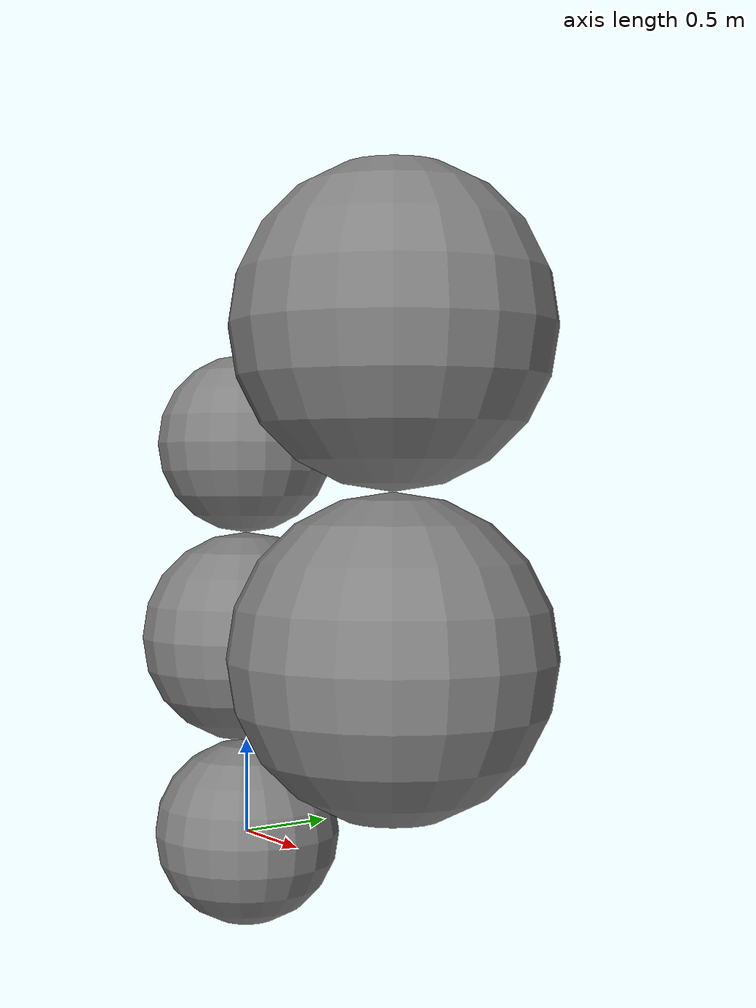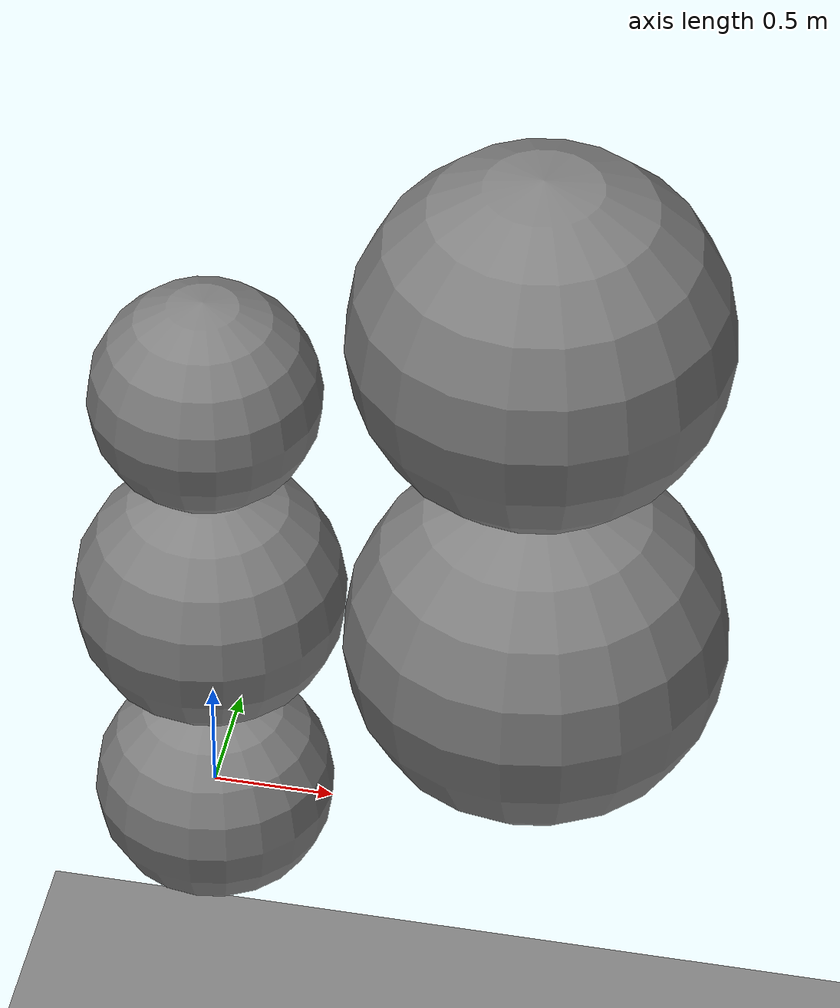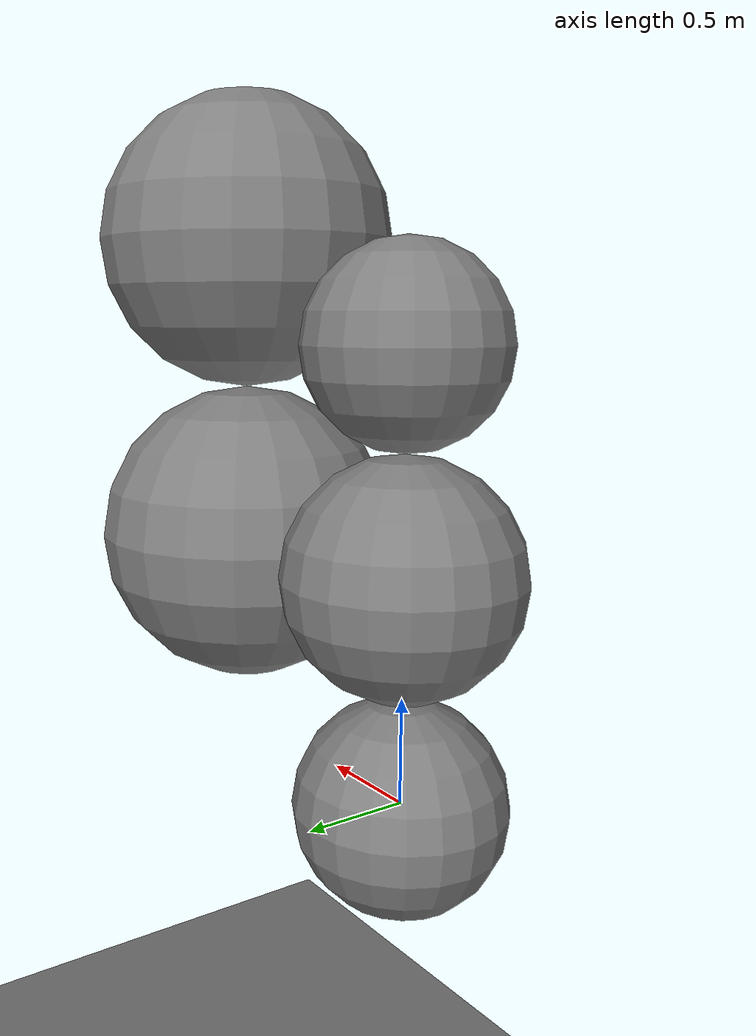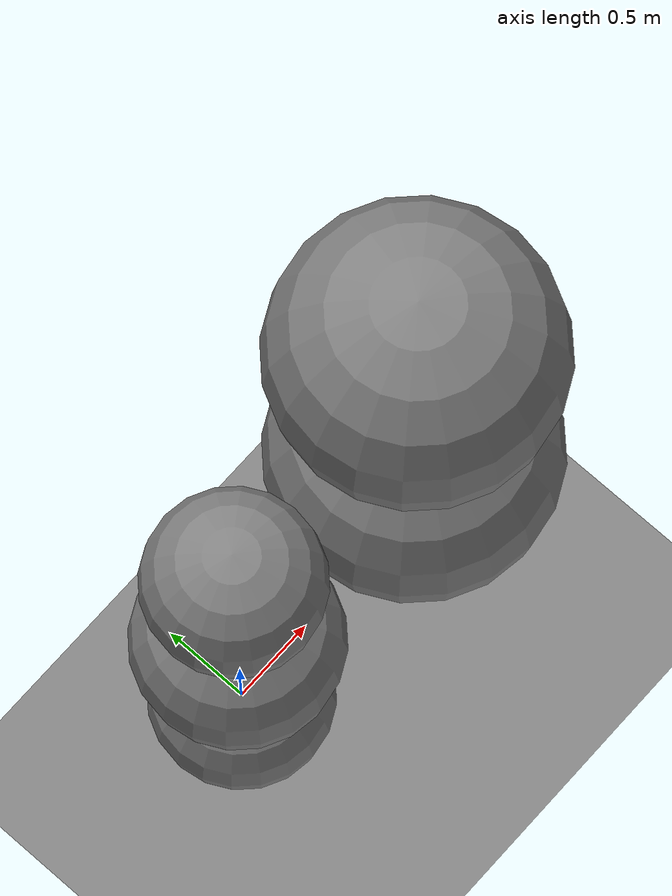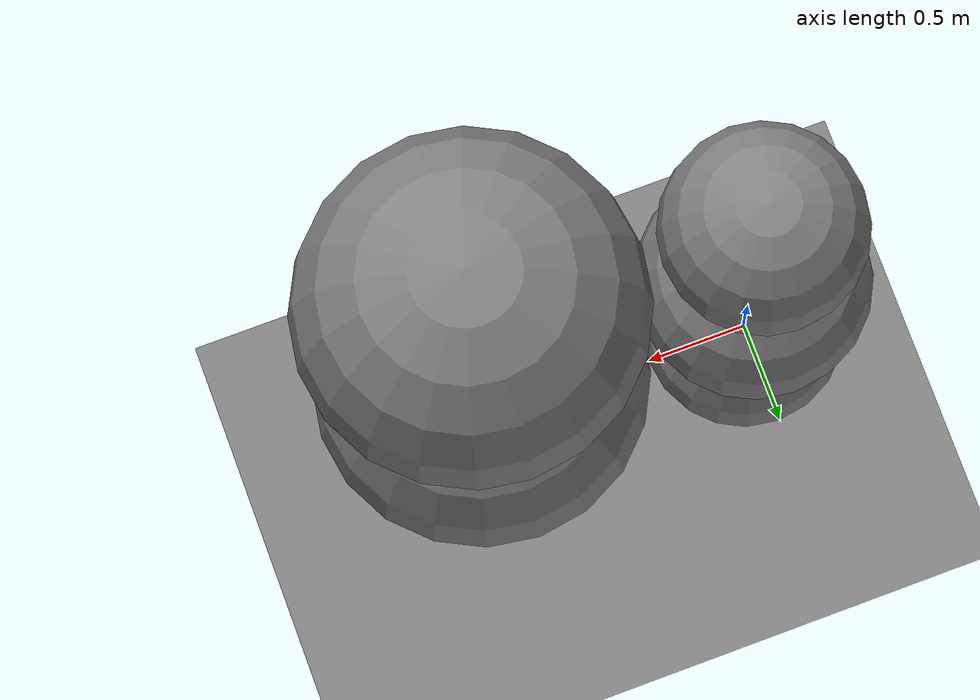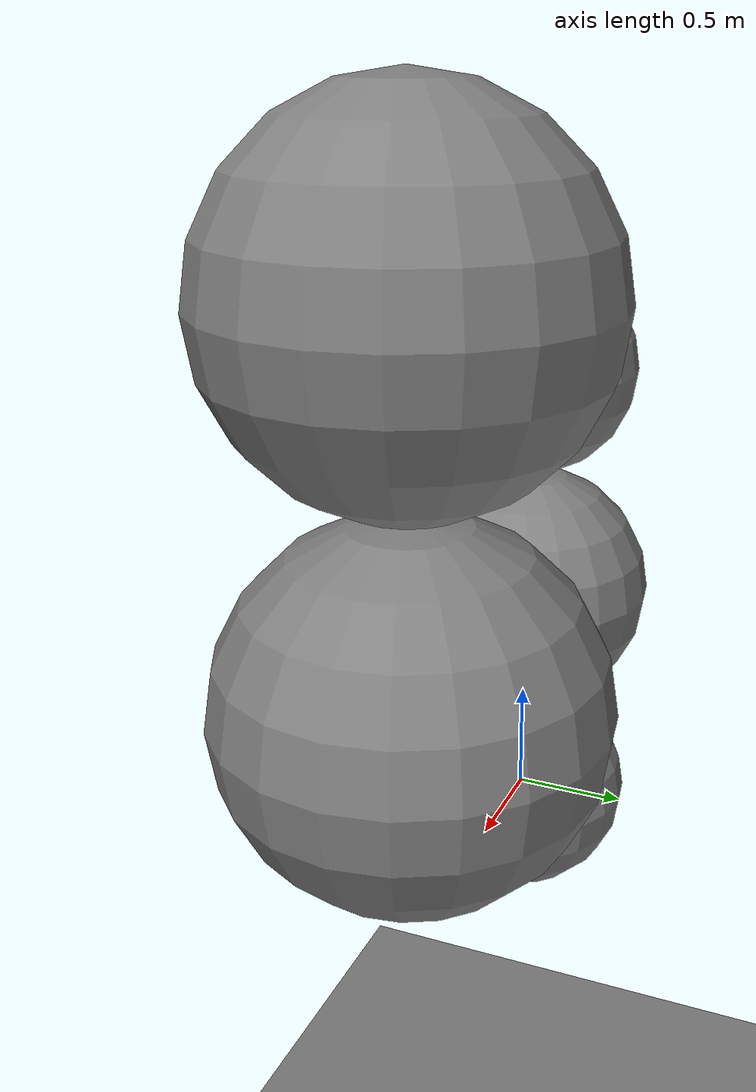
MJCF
<mujoco model="unnamed_model">
  <default>
    <default class="/"/>
  </default>
  <worldbody>
    <geom name="//unnamed_geom_0" class="/" type="plane" size="100 100 0.10000000000000001" pos="0 0 -2"/>
    <body name="body0" pos="0 0 0">
      <joint name="//unnamed_joint_0" class="/" type="free"/>
      <geom name="//unnamed_geom_1" class="/" type="sphere" size="0.5 0.5 0.5"/>
      <body name="body1" pos="0 0 1.061731812010807">
        <geom name="//unnamed_geom_2" class="/" type="sphere" size="0.56173181201080713 0.56173181201080713 0.56173181201080713"/>
        <joint name="//unnamed_joint_1" class="/" type="hinge" axis="0 0 1"/>
        <body name="body2" pos="1.347762117628768 0 0">
          <geom name="//unnamed_geom_3" class="/" type="sphere" size="0.78603030561796083 0.78603030561796083 0.78603030561796083"/>
          <joint name="//unnamed_joint_2" class="/" type="ball" axis="1 0 0"/>
          <body name="body5" pos="0 0 1.5571244917694962">
            <geom name="//unnamed_geom_4" class="/" type="sphere" size="0.77109418615153524 0.77109418615153524 0.77109418615153524"/>
            <joint name="//unnamed_joint_3" class="/" type="hinge" axis="0 0 1"/>
          </body>
        </body>
        <body name="body3" pos="0 0 1.0353317032105207">
          <geom name="//unnamed_geom_5" class="/" type="sphere" size="0.47359989119971346 0.47359989119971346 0.47359989119971346"/>
          <joint name="//unnamed_joint_4" class="/" type="hinge" axis="0 0 1"/>
        </body>
      </body>
    </body>
  </worldbody>
  <actuator>
    <motor name="//unnamed_actuator_0" class="/" ctrllimited="true" ctrlrange="-1 1" joint="//unnamed_joint_1"/>
    <motor name="//unnamed_actuator_1" class="/" ctrllimited="true" ctrlrange="-1 1" joint="//unnamed_joint_2"/>
    <motor name="//unnamed_actuator_2" class="/" ctrllimited="true" ctrlrange="-1 1" joint="//unnamed_joint_3"/>
    <motor name="//unnamed_actuator_3" class="/" ctrllimited="true" ctrlrange="-1 1" joint="//unnamed_joint_4"/>
  </actuator>
</mujoco>
